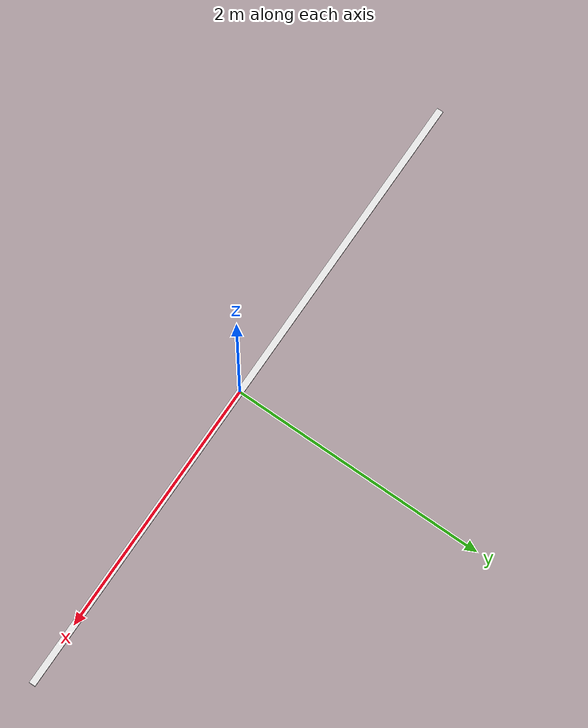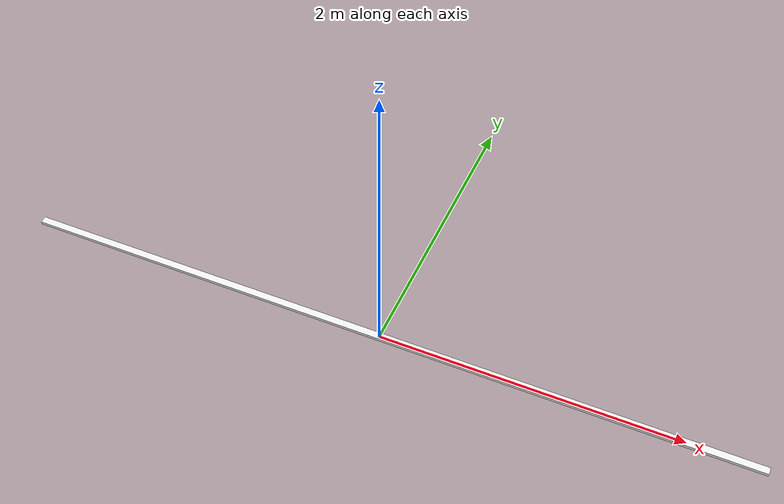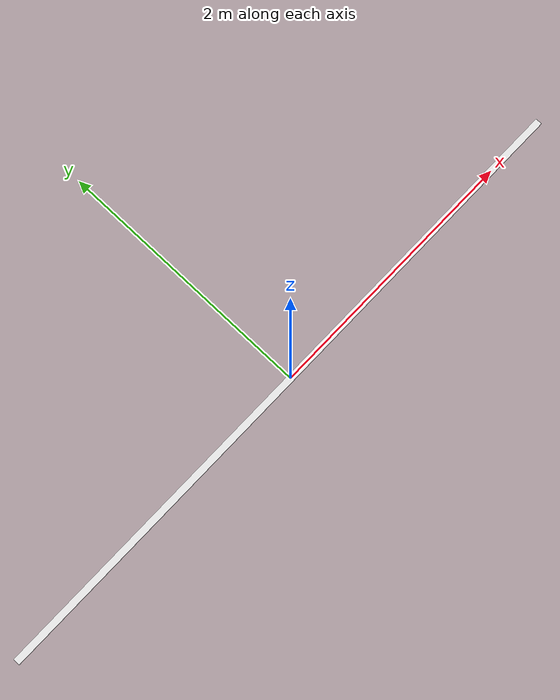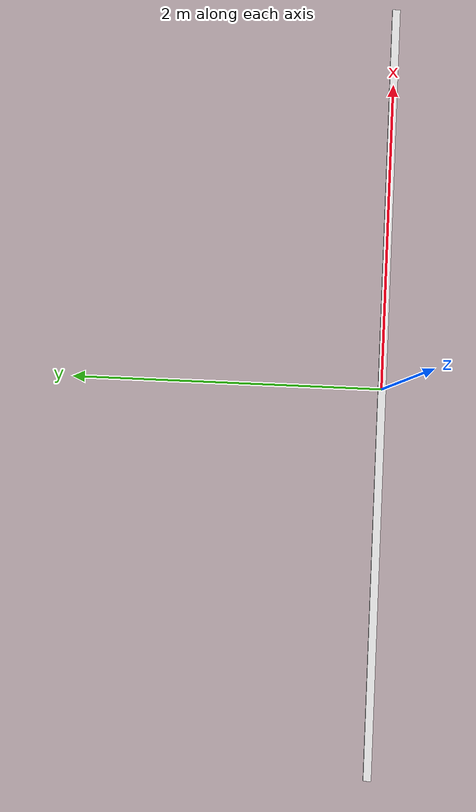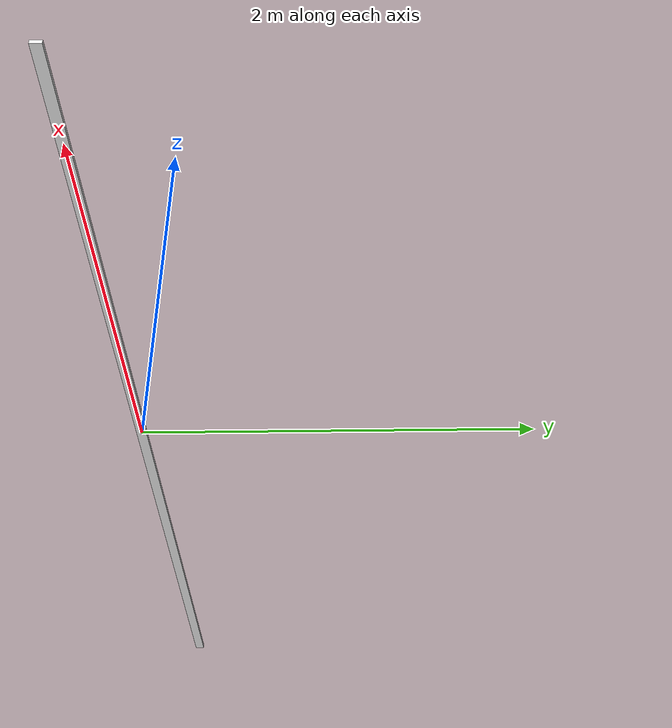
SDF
<?xml version='1.0'?>
<sdf version='1.7'>
  <model name='line2'>
    <link name='link_0'>
      <inertial>
        <mass>0.00242951</mass>
        <inertia>
          <ixx>7.87473e-07</ixx>
          <ixy>0</ixy>
          <ixz>0</ixz>
          <iyy>0.000801245</iyy>
          <iyz>0</iyz>
          <izz>0.00080186</izz>
        </inertia>
        <pose>0 0 0 0 -0 0</pose>
      </inertial>
      <pose>-0 -0 -0 0 -0 0</pose>
      <visual name='visual'>
        <pose>0 0 0 0 -0 0</pose>
        <geometry>
          <box>
            <size>5 0.05 0.02</size>
          </box>
        </geometry>
        <material>
          <lighting>1</lighting>
          <script>
            <uri>file://media/materials/scripts/gazebo.material</uri>
            <name>Gazebo/White</name>
          </script>
          <shader type='pixel'/>
        </material>
        <transparency>0</transparency>
        <cast_shadows>1</cast_shadows>
      </visual>
      <collision name='collision'>
        <laser_retro>0</laser_retro>
        <max_contacts>10</max_contacts>
        <pose>0 0 0 0 -0 0</pose>
        <geometry>
          <box>
            <size>1.98926 0.058851 0.020641</size>
          </box>
        </geometry>
        <surface>
          <friction>
            <ode>
              <mu>1</mu>
              <mu2>1</mu2>
              <fdir1>0 0 0</fdir1>
              <slip1>0</slip1>
              <slip2>0</slip2>
            </ode>
            <torsional>
              <coefficient>1</coefficient>
              <patch_radius>0</patch_radius>
              <surface_radius>0</surface_radius>
              <use_patch_radius>1</use_patch_radius>
              <ode>
                <slip>0</slip>
              </ode>
            </torsional>
          </friction>
          <bounce>
            <restitution_coefficient>0</restitution_coefficient>
            <threshold>1e+06</threshold>
          </bounce>
          <contact>
            <collide_without_contact>0</collide_without_contact>
            <collide_without_contact_bitmask>1</collide_without_contact_bitmask>
            <collide_bitmask>1</collide_bitmask>
            <ode>
              <soft_cfm>0</soft_cfm>
              <soft_erp>0.2</soft_erp>
              <kp>1e+13</kp>
              <kd>1</kd>
              <max_vel>0.01</max_vel>
              <min_depth>0</min_depth>
            </ode>
            <bullet>
              <split_impulse>1</split_impulse>
              <split_impulse_penetration_threshold>-0.01</split_impulse_penetration_threshold>
              <soft_cfm>0</soft_cfm>
              <soft_erp>0.2</soft_erp>
              <kp>1e+13</kp>
              <kd>1</kd>
            </bullet>
          </contact>
        </surface>
      </collision>
    </link>
    <static>0</static>
    <allow_auto_disable>1</allow_auto_disable>
  </model>
</sdf>
